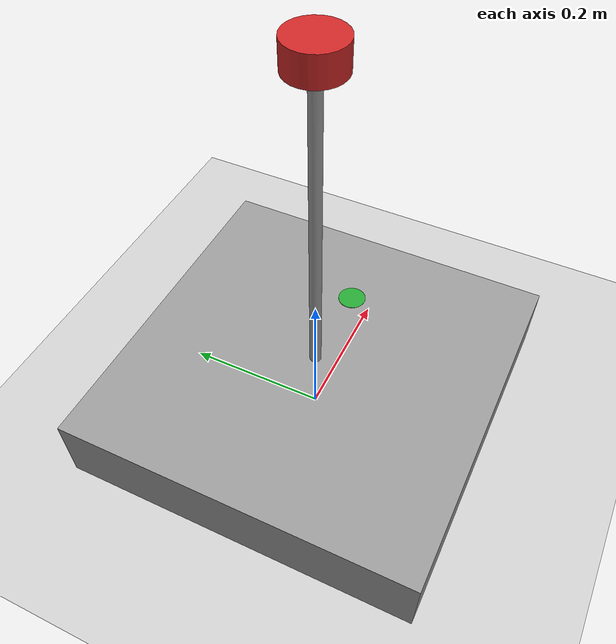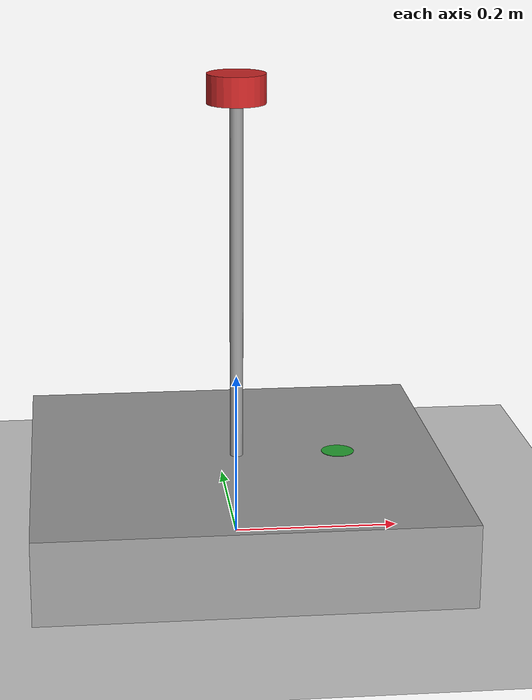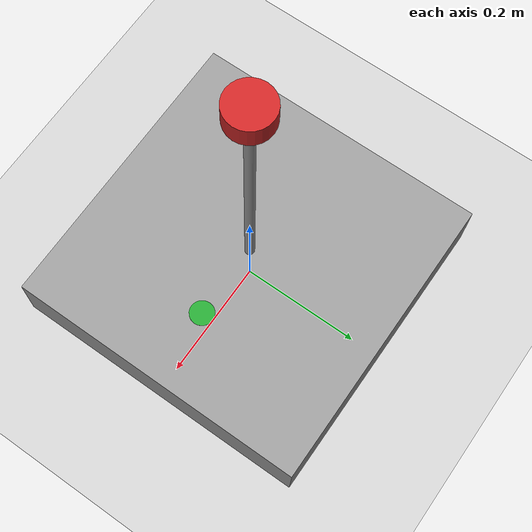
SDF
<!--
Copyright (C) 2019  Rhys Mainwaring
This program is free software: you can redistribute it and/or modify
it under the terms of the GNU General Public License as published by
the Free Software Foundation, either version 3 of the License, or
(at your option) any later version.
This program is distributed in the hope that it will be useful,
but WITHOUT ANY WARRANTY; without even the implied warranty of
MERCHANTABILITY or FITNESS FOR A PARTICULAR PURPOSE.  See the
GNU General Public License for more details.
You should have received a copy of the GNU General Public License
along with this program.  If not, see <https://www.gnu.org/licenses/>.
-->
<?xml version="1.0" ?>
<sdf version="1.6">
<world name="anemometer_demo">

    <!-- Wind -->
    <wind>
        <linear_velocity>10 0 0</linear_velocity>
    </wind>

    <!-- Lights -->
    <include>
        <uri>model://sun</uri>
    </include>

    <!-- World models  -->
    <include>
        <uri>model://ground_plane</uri>
    </include>

    <!-- Test model  -->
    <model name="anemometer">
        <pose>0 0 0.05 0 0 0</pose>
        <static>false</static>
        <enable_wind>true</enable_wind>

        <plugin name="ardupilot_plugin" filename="libArduPilotPlugin.so">
            <fdm_addr>127.0.0.1</fdm_addr>
            <fdm_port_in>9002</fdm_port_in>
            <fdm_port_out>9003</fdm_port_out>
            <connectionTimeoutMaxCount>5</connectionTimeoutMaxCount>
            <modelXYZToAirplaneXForwardZDown>0 0 0 3.141593 0 0</modelXYZToAirplaneXForwardZDown>
            <gazeboXYZToNED>0 0 0 3.141593 0 0</gazeboXYZToNED>
            <imuName>base_link::imu_sensor</imuName>
            <anemometerName>base_link::anemometer_sensor</anemometerName>
        </plugin>

        <link name="base_link">
            <visual name="base_visual">
                <geometry>
                    <box>
                        <size>0.5 0.5 0.1</size>
                    </box>
                </geometry>
                <material>
                    <script>
                        <name>Gazebo/Gray</name>
                    </script>
                </material>
            </visual>

            <visual name="forward_visual">
                <pose>0.125 0 0.05 0 0 0</pose>
                <geometry>
                    <cylinder>
                        <radius>0.02</radius>
                        <length>0.001</length>
                    </cylinder>
                </geometry>
                <material>
                    <script>
                        <name>Gazebo/Green</name>
                    </script>
                </material>
            </visual>

            <visual name="mast_visual">
                <pose>0 0 0.25 0 0 0</pose>
                <geometry>
                    <cylinder>
                        <radius>0.008</radius>
                        <length>0.5</length>
                    </cylinder>
                </geometry>
                <material>
                    <script>
                        <name>Gazebo/Gray</name>
                    </script>
                </material>
            </visual>

            <visual name="sensor_visual">
                <pose>0 0 0.5 0 0 0</pose>
                <geometry>
                    <cylinder>
                        <radius>0.035</radius>
                        <length>0.035</length>
                    </cylinder>
                </geometry>
                <material>
                    <script>
                        <name>Gazebo/Red</name>
                    </script>
                </material>
            </visual>

            <collision name="base_collision">
                <geometry>
                    <box>
                        <size>0.5 0.5 0.1</size>
                    </box>
                </geometry>
            </collision>

            <inertial>
                <pose>0 0 0 0 0 0</pose>
                <mass>10</mass>
                <inertia>
                    <ixx>0.216666667</ixx>
                    <ixy>0</ixy>
                    <iyy>0.216666667</iyy>
                    <iyz>0</iyz>
                    <izz>0.416666667</izz>
                </inertia>
            </inertial>

            <!-- Sensors -->
            <sensor name="anemometer_sensor" type="anemometer">
                <pose>0 0 0.5 0 0 0</pose>
                <always_on>true</always_on>
                <update_rate>50</update_rate>
                <topic>sensors/anemometer</topic>
            </sensor>

            <!-- IMU required by ArduPilotPlugin -->
            <sensor name='imu_sensor' type='imu'>
                <pose>0 0 0.5 3.141593 0 0</pose>
                <always_on>1</always_on>
                <update_rate>1000</update_rate>
                <topic>sensors/imu</topic>
                <imu>
                    <topic>sensors/imu</topic>
                    <angular_velocity/>
                    <linear_acceleration/>
                </imu>
            </sensor>

        </link>
    </model>

</world>
</sdf>
